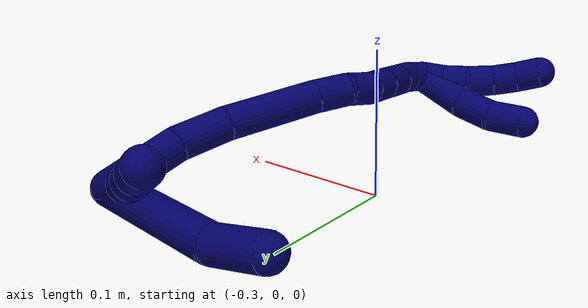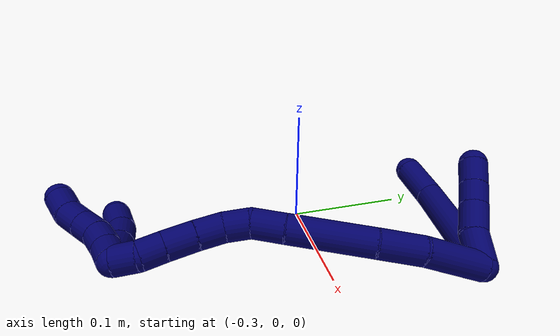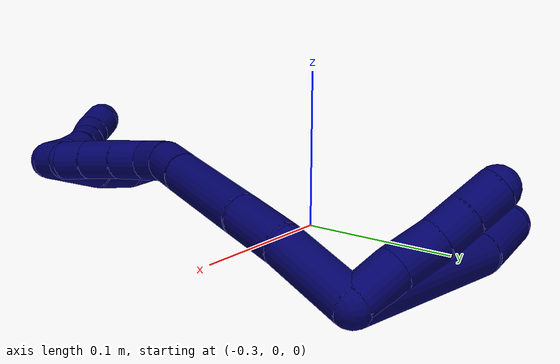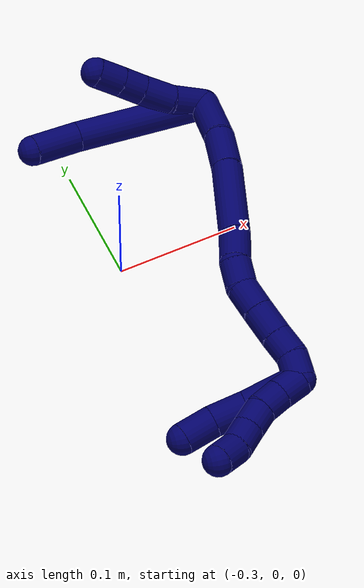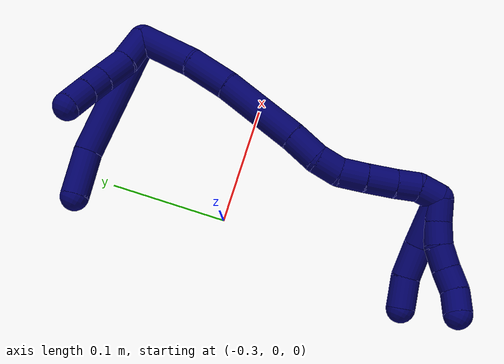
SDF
<sdf version="1.7">
 <world name="default">
  <model name="photoneo_s_sensor">
   <static>1</static>
   <pose>0 0 2 1.57079 1.57079 3.14159</pose>
   <link name="link">
    <inertial><mass>0.1</mass></inertial>
    <sensor name="sensor" type="depth">
     <update_rate>30</update_rate>
     <camera>
      <horizontal_fov>1.22</horizontal_fov>
      <image><width>1920</width><height>1200</height><format>B8G8R8</format></image>
      <clip><near>0.1</near><far>4</far></clip>
      <depth_camera><output>points</output></depth_camera>
     </camera>
     <plugin name="camera_plugin" filename="libgazebo_ros_depth_camera.so">
      <baseline>0.2</baseline>
      <alwaysOn>1</alwaysOn>
      <updateRate>0.0</updateRate>
      <cameraName>camera_ir</cameraName>
      <imageTopicName>/camera/color/image_raw</imageTopicName>
      <cameraInfoTopicName>/camera/color/camera_info</cameraInfoTopicName>
      <depthImageTopicName>/camera/depth/image_raw</depthImageTopicName>
      <depthImageCameraInfoTopicName>/camera/depth/camera_info</depthImageCameraInfoTopicName>
      <pointCloudTopicName>/camera/depth/points</pointCloudTopicName>
      <frameName>fr_optical</frameName>
      <pointCloudCutoff>0.1</pointCloudCutoff>
      <pointCloudCutoffMax>2.0</pointCloudCutoffMax>
      <distortionK1>0</distortionK1>
      <distortionK2>0</distortionK2>
      <distortionK3>0</distortionK3>
      <distortionT1>0</distortionT1>
      <distortionT2>0</distortionT2>
      <CxPrime>0</CxPrime>
      <Cx>0</Cx>
      <Cy>0</Cy>
      <focalLength>0</focalLength>
      <hackBaseline>0</hackBaseline>
     </plugin>
    </sensor>
   </link>
  </model>
  <model name="bin">
   <static>1</static>
   <link name="bottom">
    <collision name="collision-bottom">
     <pose>0 0 -0.01 0 -0 0</pose>
     <geometry><box><size>0.8 0.6 0.02</size></box></geometry>
     <surface>
      <friction><ode><mu>100</mu><mu2>100</mu2></ode></friction>
      <contact><collide_bitmask>65535</collide_bitmask></contact>
     </surface>
    </collision>
   </link>
   <link name="west_wall">
    <collision name="collision-west_wall">
     <pose>-0.41 0 0.1 0 -0 0</pose>
     <geometry><box><size>0.02 0.6 0.2</size></box></geometry>
     <surface>
      <friction><ode><mu>100</mu><mu2>100</mu2></ode></friction>
      <contact><collide_bitmask>65535</collide_bitmask></contact>
     </surface>
    </collision>
   </link>
   <link name="east_wall">
    <collision name="collision-east_wall">
     <pose>0.41 0 0.1 0 -0 0</pose>
     <geometry><box><size>0.02 0.6 0.2</size></box></geometry>
     <surface>
      <friction><ode><mu>100</mu><mu2>100</mu2></ode></friction>
      <contact><collide_bitmask>65535</collide_bitmask></contact>
     </surface>
    </collision>
   </link>
   <link name="south_wall">
    <collision name="collision-south_wall">
     <pose>0 -0.31 0.1 0 -0 0</pose>
     <geometry><box><size>0.8 0.02 0.2</size></box></geometry>
     <surface>
      <friction><ode><mu>100</mu><mu2>100</mu2></ode></friction>
      <contact><collide_bitmask>65535</collide_bitmask></contact>
     </surface>
    </collision>
   </link>
   <link name="north_wall">
    <collision name="collision-north_wall">
     <pose>0 0.31 0.1 0 -0 0</pose>
     <geometry><box><size>0.8 0.02 0.2</size></box></geometry>
     <surface>
      <friction><ode><mu>100</mu><mu2>100</mu2></ode></friction>
      <contact><collide_bitmask>65535</collide_bitmask></contact>
     </surface>
    </collision>
   </link>
  </model>
  <model name="7">
   <static>0</static>
   <link name="7">
    <collision name="collision-cylinder-e_1_2_8">
     <pose>-0.003024 -0.001012 0.054615 0.018529 -0.055312 -0.000513</pose>
     <geometry><cylinder><radius>0.0125</radius><length>0.109416</length></cylinder></geometry>
     <surface>
      <friction><ode><mu>1.16</mu><mu2>1.16</mu2><slip1>0</slip1><slip2>0</slip2></ode></friction>
      <contact><ode><kp>1e+06</kp><kd>1</kd><max_vel>0</max_vel><min_depth>0.001</min_depth></ode></contact>
     </surface>
    </collision>
    <visual name="visual-cylinder-e_1_2_8">
     <pose>-0.003024 -0.001012 0.054615 0.018529 -0.055312 -0.000513</pose>
     <geometry><cylinder><radius>0.0125</radius><length>0.109416</length></cylinder></geometry>
     <material><ambient>0.003922 0 0.403922 1</ambient></material>
    </visual>
    <collision name="collision-cylinder-e_2_8_6">
     <pose>-0.002971 -0.005286 0.12902 0.163359 0.15229 0.012491</pose>
     <geometry><cylinder><radius>0.0125</radius><length>0.040584</length></cylinder></geometry>
     <surface>
      <friction><ode><mu>1.16</mu><mu2>1.16</mu2><slip1>0</slip1><slip2>0</slip2></ode></friction>
      <contact><ode><kp>1e+06</kp><kd>1</kd><max_vel>0</max_vel><min_depth>0.001</min_depth></ode></contact>
     </surface>
    </collision>
    <visual name="visual-cylinder-e_2_8_6">
     <pose>-0.002971 -0.005286 0.12902 0.163359 0.15229 0.012491</pose>
     <geometry><cylinder><radius>0.0125</radius><length>0.040584</length></cylinder></geometry>
     <material><ambient>0.003922 0 0.403922 1</ambient></material>
    </visual>
    <collision name="collision-cylinder-e_1_2_9">
     <pose>0.004818 0.002678 0.013986 -0.189182 0.326218 -0.031224</pose>
     <geometry><cylinder><radius>0.0125</radius><length>0.030066</length></cylinder></geometry>
     <surface>
      <friction><ode><mu>1.16</mu><mu2>1.16</mu2><slip1>0</slip1><slip2>0</slip2></ode></friction>
      <contact><ode><kp>1e+06</kp><kd>1</kd><max_vel>0</max_vel><min_depth>0.001</min_depth></ode></contact>
     </surface>
    </collision>
    <visual name="visual-cylinder-e_1_2_9">
     <pose>0.004818 0.002678 0.013986 -0.189182 0.326218 -0.031224</pose>
     <geometry><cylinder><radius>0.0125</radius><length>0.030066</length></cylinder></geometry>
     <material><ambient>0.003922 0 0.403922 1</ambient></material>
    </visual>
    <collision name="collision-cylinder-e_2_9_10">
     <pose>0.013843 0.010773 0.039759 -0.430822 0.313666 -0.069173</pose>
     <geometry><cylinder><radius>0.0125</radius><length>0.027275</length></cylinder></geometry>
     <surface>
      <friction><ode><mu>1.16</mu><mu2>1.16</mu2><slip1>0</slip1><slip2>0</slip2></ode></friction>
      <contact><ode><kp>1e+06</kp><kd>1</kd><max_vel>0</max_vel><min_depth>0.001</min_depth></ode></contact>
     </surface>
    </collision>
    <visual name="visual-cylinder-e_2_9_10">
     <pose>0.013843 0.010773 0.039759 -0.430822 0.313666 -0.069173</pose>
     <geometry><cylinder><radius>0.0125</radius><length>0.027275</length></cylinder></geometry>
     <material><ambient>0.003922 0 0.403922 1</ambient></material>
    </visual>
    <collision name="collision-cylinder-e_3_10_11">
     <pose>0.022097 0.019906 0.060052 -0.411859 0.411106 -0.087051</pose>
     <geometry><cylinder><radius>0.0125</radius><length>0.020253</length></cylinder></geometry>
     <surface>
      <friction><ode><mu>1.16</mu><mu2>1.16</mu2><slip1>0</slip1><slip2>0</slip2></ode></friction>
      <contact><ode><kp>1e+06</kp><kd>1</kd><max_vel>0</max_vel><min_depth>0.001</min_depth></ode></contact>
     </surface>
    </collision>
    <visual name="visual-cylinder-e_3_10_11">
     <pose>0.022097 0.019906 0.060052 -0.411859 0.411106 -0.087051</pose>
     <geometry><cylinder><radius>0.0125</radius><length>0.020253</length></cylinder></geometry>
     <material><ambient>0.003922 0 0.403922 1</ambient></material>
    </visual>
    <collision name="collision-cylinder-e_4_11_5">
     <pose>0.03056 0.027611 0.078051 -0.397757 0.40514 -0.082741</pose>
     <geometry><cylinder><radius>0.0125</radius><length>0.022406</length></cylinder></geometry>
     <surface>
      <friction><ode><mu>1.16</mu><mu2>1.16</mu2><slip1>0</slip1><slip2>0</slip2></ode></friction>
      <contact><ode><kp>1e+06</kp><kd>1</kd><max_vel>0</max_vel><min_depth>0.001</min_depth></ode></contact>
     </surface>
    </collision>
    <visual name="visual-cylinder-e_4_11_5">
     <pose>0.03056 0.027611 0.078051 -0.397757 0.40514 -0.082741</pose>
     <geometry><cylinder><radius>0.0125</radius><length>0.022406</length></cylinder></geometry>
     <material><ambient>0.003922 0 0.403922 1</ambient></material>
    </visual>
    <collision name="collision-cylinder-e_1_2_12">
     <pose>0.014191 -0.022411 0.002379 1.46506 0.56195 0.507985</pose>
     <geometry><cylinder><radius>0.0125</radius><length>0.053265</length></cylinder></geometry>
     <surface>
      <friction><ode><mu>1.16</mu><mu2>1.16</mu2><slip1>0</slip1><slip2>0</slip2></ode></friction>
      <contact><ode><kp>1e+06</kp><kd>1</kd><max_vel>0</max_vel><min_depth>0.001</min_depth></ode></contact>
     </surface>
    </collision>
    <visual name="visual-cylinder-e_1_2_12">
     <pose>0.014191 -0.022411 0.002379 1.46506 0.56195 0.507985</pose>
     <geometry><cylinder><radius>0.0125</radius><length>0.053265</length></cylinder></geometry>
     <material><ambient>0.003922 0 0.403922 1</ambient></material>
    </visual>
    <collision name="collision-cylinder-e_2_12_13">
     <pose>0.035693 -0.062069 0.008002 1.38484 0.394729 0.32872</pose>
     <geometry><cylinder><radius>0.0125</radius><length>0.038024</length></cylinder></geometry>
     <surface>
      <friction><ode><mu>1.16</mu><mu2>1.16</mu2><slip1>0</slip1><slip2>0</slip2></ode></friction>
      <contact><ode><kp>1e+06</kp><kd>1</kd><max_vel>0</max_vel><min_depth>0.001</min_depth></ode></contact>
     </surface>
    </collision>
    <visual name="visual-cylinder-e_2_12_13">
     <pose>0.035693 -0.062069 0.008002 1.38484 0.394729 0.32872</pose>
     <geometry><cylinder><radius>0.0125</radius><length>0.038024</length></cylinder></geometry>
     <material><ambient>0.003922 0 0.403922 1</ambient></material>
    </visual>
    <collision name="collision-cylinder-e_3_13_14">
     <pose>0.054182 -0.111866 0.02012 1.30466 0.319946 0.245272</pose>
     <geometry><cylinder><radius>0.0125</radius><length>0.071082</length></cylinder></geometry>
     <surface>
      <friction><ode><mu>1.16</mu><mu2>1.16</mu2><slip1>0</slip1><slip2>0</slip2></ode></friction>
      <contact><ode><kp>1e+06</kp><kd>1</kd><max_vel>0</max_vel><min_depth>0.001</min_depth></ode></contact>
     </surface>
    </collision>
    <visual name="visual-cylinder-e_3_13_14">
     <pose>0.054182 -0.111866 0.02012 1.30466 0.319946 0.245272</pose>
     <geometry><cylinder><radius>0.0125</radius><length>0.071082</length></cylinder></geometry>
     <material><ambient>0.003922 0 0.403922 1</ambient></material>
    </visual>
    <collision name="collision-cylinder-e_4_14_15">
     <pose>0.068981 -0.156817 0.033255 1.23976 0.269454 0.192888</pose>
     <geometry><cylinder><radius>0.0125</radius><length>0.027208</length></cylinder></geometry>
     <surface>
      <friction><ode><mu>1.16</mu><mu2>1.16</mu2><slip1>0</slip1><slip2>0</slip2></ode></friction>
      <contact><ode><kp>1e+06</kp><kd>1</kd><max_vel>0</max_vel><min_depth>0.001</min_depth></ode></contact>
     </surface>
    </collision>
    <visual name="visual-cylinder-e_4_14_15">
     <pose>0.068981 -0.156817 0.033255 1.23976 0.269454 0.192888</pose>
     <geometry><cylinder><radius>0.0125</radius><length>0.027208</length></cylinder></geometry>
     <material><ambient>0.003922 0 0.403922 1</ambient></material>
    </visual>
    <collision name="collision-cylinder-e_5_15_16">
     <pose>0.073302 -0.180065 0.038419 1.48778 0.064134 0.059022</pose>
     <geometry><cylinder><radius>0.0125</radius><length>0.021814</length></cylinder></geometry>
     <surface>
      <friction><ode><mu>1.16</mu><mu2>1.16</mu2><slip1>0</slip1><slip2>0</slip2></ode></friction>
      <contact><ode><kp>1e+06</kp><kd>1</kd><max_vel>0</max_vel><min_depth>0.001</min_depth></ode></contact>
     </surface>
    </collision>
    <visual name="visual-cylinder-e_5_15_16">
     <pose>0.073302 -0.180065 0.038419 1.48778 0.064134 0.059022</pose>
     <geometry><cylinder><radius>0.0125</radius><length>0.021814</length></cylinder></geometry>
     <material><ambient>0.003922 0 0.403922 1</ambient></material>
    </visual>
    <collision name="collision-cylinder-e_6_16_17">
     <pose>0.07561 -0.202054 0.036627 1.80809 0.139474 0.177052</pose>
     <geometry><cylinder><radius>0.0125</radius><length>0.023153</length></cylinder></geometry>
     <surface>
      <friction><ode><mu>1.16</mu><mu2>1.16</mu2><slip1>0</slip1><slip2>0</slip2></ode></friction>
      <contact><ode><kp>1e+06</kp><kd>1</kd><max_vel>0</max_vel><min_depth>0.001</min_depth></ode></contact>
     </surface>
    </collision>
    <visual name="visual-cylinder-e_6_16_17">
     <pose>0.07561 -0.202054 0.036627 1.80809 0.139474 0.177052</pose>
     <geometry><cylinder><radius>0.0125</radius><length>0.023153</length></cylinder></geometry>
     <material><ambient>0.003922 0 0.403922 1</ambient></material>
    </visual>
    <collision name="collision-cylinder-e_7_17_18">
     <pose>0.078589 -0.225337 0.030597 1.8389 0.108303 0.141969</pose>
     <geometry><cylinder><radius>0.0125</radius><length>0.025329</length></cylinder></geometry>
     <surface>
      <friction><ode><mu>1.16</mu><mu2>1.16</mu2><slip1>0</slip1><slip2>0</slip2></ode></friction>
      <contact><ode><kp>1e+06</kp><kd>1</kd><max_vel>0</max_vel><min_depth>0.001</min_depth></ode></contact>
     </surface>
    </collision>
    <visual name="visual-cylinder-e_7_17_18">
     <pose>0.078589 -0.225337 0.030597 1.8389 0.108303 0.141969</pose>
     <geometry><cylinder><radius>0.0125</radius><length>0.025329</length></cylinder></geometry>
     <material><ambient>0.003922 0 0.403922 1</ambient></material>
    </visual>
    <collision name="collision-cylinder-e_8_18_19">
     <pose>0.081016 -0.246959 0.024189 1.88416 0.105839 0.145432</pose>
     <geometry><cylinder><radius>0.0125</radius><length>0.020046</length></cylinder></geometry>
     <surface>
      <friction><ode><mu>1.16</mu><mu2>1.16</mu2><slip1>0</slip1><slip2>0</slip2></ode></friction>
      <contact><ode><kp>1e+06</kp><kd>1</kd><max_vel>0</max_vel><min_depth>0.001</min_depth></ode></contact>
     </surface>
    </collision>
    <visual name="visual-cylinder-e_8_18_19">
     <pose>0.081016 -0.246959 0.024189 1.88416 0.105839 0.145432</pose>
     <geometry><cylinder><radius>0.0125</radius><length>0.020046</length></cylinder></geometry>
     <material><ambient>0.003922 0 0.403922 1</ambient></material>
    </visual>
    <collision name="collision-cylinder-e_9_19_1">
     <pose>0.082682 -0.266458 0.021416 1.54099 0.060499 0.058723</pose>
     <geometry><cylinder><radius>0.0125</radius><length>0.020081</length></cylinder></geometry>
     <surface>
      <friction><ode><mu>1.16</mu><mu2>1.16</mu2><slip1>0</slip1><slip2>0</slip2></ode></friction>
      <contact><ode><kp>1e+06</kp><kd>1</kd><max_vel>0</max_vel><min_depth>0.001</min_depth></ode></contact>
     </surface>
    </collision>
    <visual name="visual-cylinder-e_9_19_1">
     <pose>0.082682 -0.266458 0.021416 1.54099 0.060499 0.058723</pose>
     <geometry><cylinder><radius>0.0125</radius><length>0.020081</length></cylinder></geometry>
     <material><ambient>0.003922 0 0.403922 1</ambient></material>
    </visual>
    <collision name="collision-cylinder-e_1_1_20">
     <pose>0.075121 -0.279204 0.042102 0.133001 -0.378019 -0.025478</pose>
     <geometry><cylinder><radius>0.0125</radius><length>0.044265</length></cylinder></geometry>
     <surface>
      <friction><ode><mu>1.16</mu><mu2>1.16</mu2><slip1>0</slip1><slip2>0</slip2></ode></friction>
      <contact><ode><kp>1e+06</kp><kd>1</kd><max_vel>0</max_vel><min_depth>0.001</min_depth></ode></contact>
     </surface>
    </collision>
    <visual name="visual-cylinder-e_1_1_20">
     <pose>0.075121 -0.279204 0.042102 0.133001 -0.378019 -0.025478</pose>
     <geometry><cylinder><radius>0.0125</radius><length>0.044265</length></cylinder></geometry>
     <material><ambient>0.003922 0 0.403922 1</ambient></material>
    </visual>
    <collision name="collision-cylinder-e_2_20_21">
     <pose>0.063845 -0.283547 0.076481 0.114937 -0.21714 -0.012542</pose>
     <geometry><cylinder><radius>0.0125</radius><length>0.028845</length></cylinder></geometry>
     <surface>
      <friction><ode><mu>1.16</mu><mu2>1.16</mu2><slip1>0</slip1><slip2>0</slip2></ode></friction>
      <contact><ode><kp>1e+06</kp><kd>1</kd><max_vel>0</max_vel><min_depth>0.001</min_depth></ode></contact>
     </surface>
    </collision>
    <visual name="visual-cylinder-e_2_20_21">
     <pose>0.063845 -0.283547 0.076481 0.114937 -0.21714 -0.012542</pose>
     <geometry><cylinder><radius>0.0125</radius><length>0.028845</length></cylinder></geometry>
     <material><ambient>0.003922 0 0.403922 1</ambient></material>
    </visual>
    <collision name="collision-cylinder-e_3_21_4">
     <pose>0.060447 -0.288878 0.10339 0.280104 -0.021624 -0.003049</pose>
     <geometry><cylinder><radius>0.0125</radius><length>0.02689</length></cylinder></geometry>
     <surface>
      <friction><ode><mu>1.16</mu><mu2>1.16</mu2><slip1>0</slip1><slip2>0</slip2></ode></friction>
      <contact><ode><kp>1e+06</kp><kd>1</kd><max_vel>0</max_vel><min_depth>0.001</min_depth></ode></contact>
     </surface>
    </collision>
    <visual name="visual-cylinder-e_3_21_4">
     <pose>0.060447 -0.288878 0.10339 0.280104 -0.021624 -0.003049</pose>
     <geometry><cylinder><radius>0.0125</radius><length>0.02689</length></cylinder></geometry>
     <material><ambient>0.003922 0 0.403922 1</ambient></material>
    </visual>
    <collision name="collision-cylinder-e_1_1_22">
     <pose>0.083106 -0.280092 0.031035 0.370105 -0.018319 -0.003429</pose>
     <geometry><cylinder><radius>0.0125</radius><length>0.02</length></cylinder></geometry>
     <surface>
      <friction><ode><mu>1.16</mu><mu2>1.16</mu2><slip1>0</slip1><slip2>0</slip2></ode></friction>
      <contact><ode><kp>1e+06</kp><kd>1</kd><max_vel>0</max_vel><min_depth>0.001</min_depth></ode></contact>
     </surface>
    </collision>
    <visual name="visual-cylinder-e_1_1_22">
     <pose>0.083106 -0.280092 0.031035 0.370105 -0.018319 -0.003429</pose>
     <geometry><cylinder><radius>0.0125</radius><length>0.02</length></cylinder></geometry>
     <material><ambient>0.003922 0 0.403922 1</ambient></material>
    </visual>
    <collision name="collision-cylinder-e_2_22_23">
     <pose>0.083935 -0.288045 0.049311 0.450981 0.101386 0.023276</pose>
     <geometry><cylinder><radius>0.0125</radius><length>0.02</length></cylinder></geometry>
     <surface>
      <friction><ode><mu>1.16</mu><mu2>1.16</mu2><slip1>0</slip1><slip2>0</slip2></ode></friction>
      <contact><ode><kp>1e+06</kp><kd>1</kd><max_vel>0</max_vel><min_depth>0.001</min_depth></ode></contact>
     </surface>
    </collision>
    <visual name="visual-cylinder-e_2_22_23">
     <pose>0.083935 -0.288045 0.049311 0.450981 0.101386 0.023276</pose>
     <geometry><cylinder><radius>0.0125</radius><length>0.02</length></cylinder></geometry>
     <material><ambient>0.003922 0 0.403922 1</ambient></material>
    </visual>
    <collision name="collision-cylinder-e_3_23_24">
     <pose>0.086352 -0.298905 0.065712 0.719368 0.14092 0.053067</pose>
     <geometry><cylinder><radius>0.0125</radius><length>0.02</length></cylinder></geometry>
     <surface>
      <friction><ode><mu>1.16</mu><mu2>1.16</mu2><slip1>0</slip1><slip2>0</slip2></ode></friction>
      <contact><ode><kp>1e+06</kp><kd>1</kd><max_vel>0</max_vel><min_depth>0.001</min_depth></ode></contact>
     </surface>
    </collision>
    <visual name="visual-cylinder-e_3_23_24">
     <pose>0.086352 -0.298905 0.065712 0.719368 0.14092 0.053067</pose>
     <geometry><cylinder><radius>0.0125</radius><length>0.02</length></cylinder></geometry>
     <material><ambient>0.003922 0 0.403922 1</ambient></material>
    </visual>
    <collision name="collision-cylinder-e_4_24_25">
     <pose>0.090344 -0.312004 0.080236 0.748768 0.261768 0.103352</pose>
     <geometry><cylinder><radius>0.0125</radius><length>0.02</length></cylinder></geometry>
     <surface>
      <friction><ode><mu>1.16</mu><mu2>1.16</mu2><slip1>0</slip1><slip2>0</slip2></ode></friction>
      <contact><ode><kp>1e+06</kp><kd>1</kd><max_vel>0</max_vel><min_depth>0.001</min_depth></ode></contact>
     </surface>
    </collision>
    <visual name="visual-cylinder-e_4_24_25">
     <pose>0.090344 -0.312004 0.080236 0.748768 0.261768 0.103352</pose>
     <geometry><cylinder><radius>0.0125</radius><length>0.02</length></cylinder></geometry>
     <material><ambient>0.003922 0 0.403922 1</ambient></material>
    </visual>
    <collision name="collision-cylinder-e_5_25_3">
     <pose>0.096272 -0.322556 0.095858 0.435496 0.340499 0.076037</pose>
     <geometry><cylinder><radius>0.0125</radius><length>0.02</length></cylinder></geometry>
     <surface>
      <friction><ode><mu>1.16</mu><mu2>1.16</mu2><slip1>0</slip1><slip2>0</slip2></ode></friction>
      <contact><ode><kp>1e+06</kp><kd>1</kd><max_vel>0</max_vel><min_depth>0.001</min_depth></ode></contact>
     </surface>
    </collision>
    <visual name="visual-cylinder-e_5_25_3">
     <pose>0.096272 -0.322556 0.095858 0.435496 0.340499 0.076037</pose>
     <geometry><cylinder><radius>0.0125</radius><length>0.02</length></cylinder></geometry>
     <material><ambient>0.003922 0 0.403922 1</ambient></material>
    </visual>
    <collision name="collision-sphere-3">
     <pose>0.099611 -0.326532 0.104404 0 -0 0</pose>
     <geometry><sphere><radius>0.0125</radius></sphere></geometry>
     <surface>
      <friction><ode><mu>1.16</mu><mu2>1.16</mu2><slip1>0</slip1><slip2>0</slip2></ode></friction>
      <contact><ode><kp>1e+06</kp><kd>1</kd><max_vel>0</max_vel><min_depth>0.001</min_depth></ode></contact>
     </surface>
    </collision>
    <visual name="visual-sphere-3">
     <pose>0.099611 -0.326532 0.104404 0 -0 0</pose>
     <geometry><sphere><radius>0.0125</radius></sphere></geometry>
     <material><ambient>0.003922 0 0.403922 1</ambient></material>
    </visual>
    <collision name="collision-sphere-25">
     <pose>0.092932 -0.31858 0.087312 0 -0 0</pose>
     <geometry><sphere><radius>0.0125</radius></sphere></geometry>
     <surface>
      <friction><ode><mu>1.16</mu><mu2>1.16</mu2><slip1>0</slip1><slip2>0</slip2></ode></friction>
      <contact><ode><kp>1e+06</kp><kd>1</kd><max_vel>0</max_vel><min_depth>0.001</min_depth></ode></contact>
     </surface>
    </collision>
    <visual name="visual-sphere-25">
     <pose>0.092932 -0.31858 0.087312 0 -0 0</pose>
     <geometry><sphere><radius>0.0125</radius></sphere></geometry>
     <material><ambient>0.003922 0 0.403922 1</ambient></material>
    </visual>
    <collision name="collision-sphere-24">
     <pose>0.087756 -0.305429 0.07316 0 -0 0</pose>
     <geometry><sphere><radius>0.0125</radius></sphere></geometry>
     <surface>
      <friction><ode><mu>1.16</mu><mu2>1.16</mu2><slip1>0</slip1><slip2>0</slip2></ode></friction>
      <contact><ode><kp>1e+06</kp><kd>1</kd><max_vel>0</max_vel><min_depth>0.001</min_depth></ode></contact>
     </surface>
    </collision>
    <visual name="visual-sphere-24">
     <pose>0.087756 -0.305429 0.07316 0 -0 0</pose>
     <geometry><sphere><radius>0.0125</radius></sphere></geometry>
     <material><ambient>0.003922 0 0.403922 1</ambient></material>
    </visual>
    <collision name="collision-sphere-23">
     <pose>0.084947 -0.292381 0.058265 0 -0 0</pose>
     <geometry><sphere><radius>0.0125</radius></sphere></geometry>
     <surface>
      <friction><ode><mu>1.16</mu><mu2>1.16</mu2><slip1>0</slip1><slip2>0</slip2></ode></friction>
      <contact><ode><kp>1e+06</kp><kd>1</kd><max_vel>0</max_vel><min_depth>0.001</min_depth></ode></contact>
     </surface>
    </collision>
    <visual name="visual-sphere-23">
     <pose>0.084947 -0.292381 0.058265 0 -0 0</pose>
     <geometry><sphere><radius>0.0125</radius></sphere></geometry>
     <material><ambient>0.003922 0 0.403922 1</ambient></material>
    </visual>
    <collision name="collision-sphere-22">
     <pose>0.082923 -0.283709 0.040357 0 -0 0</pose>
     <geometry><sphere><radius>0.0125</radius></sphere></geometry>
     <surface>
      <friction><ode><mu>1.16</mu><mu2>1.16</mu2><slip1>0</slip1><slip2>0</slip2></ode></friction>
      <contact><ode><kp>1e+06</kp><kd>1</kd><max_vel>0</max_vel><min_depth>0.001</min_depth></ode></contact>
     </surface>
    </collision>
    <visual name="visual-sphere-22">
     <pose>0.082923 -0.283709 0.040357 0 -0 0</pose>
     <geometry><sphere><radius>0.0125</radius></sphere></geometry>
     <material><ambient>0.003922 0 0.403922 1</ambient></material>
    </visual>
    <collision name="collision-sphere-4">
     <pose>0.060156 -0.292594 0.116308 0 -0 0</pose>
     <geometry><sphere><radius>0.0125</radius></sphere></geometry>
     <surface>
      <friction><ode><mu>1.16</mu><mu2>1.16</mu2><slip1>0</slip1><slip2>0</slip2></ode></friction>
      <contact><ode><kp>1e+06</kp><kd>1</kd><max_vel>0</max_vel><min_depth>0.001</min_depth></ode></contact>
     </surface>
    </collision>
    <visual name="visual-sphere-4">
     <pose>0.060156 -0.292594 0.116308 0 -0 0</pose>
     <geometry><sphere><radius>0.0125</radius></sphere></geometry>
     <material><ambient>0.003922 0 0.403922 1</ambient></material>
    </visual>
    <collision name="collision-sphere-21">
     <pose>0.060738 -0.285162 0.090472 0 -0 0</pose>
     <geometry><sphere><radius>0.0125</radius></sphere></geometry>
     <surface>
      <friction><ode><mu>1.16</mu><mu2>1.16</mu2><slip1>0</slip1><slip2>0</slip2></ode></friction>
      <contact><ode><kp>1e+06</kp><kd>1</kd><max_vel>0</max_vel><min_depth>0.001</min_depth></ode></contact>
     </surface>
    </collision>
    <visual name="visual-sphere-21">
     <pose>0.060738 -0.285162 0.090472 0 -0 0</pose>
     <geometry><sphere><radius>0.0125</radius></sphere></geometry>
     <material><ambient>0.003922 0 0.403922 1</ambient></material>
    </visual>
    <collision name="collision-sphere-20">
     <pose>0.066952 -0.281931 0.06249 0 -0 0</pose>
     <geometry><sphere><radius>0.0125</radius></sphere></geometry>
     <surface>
      <friction><ode><mu>1.16</mu><mu2>1.16</mu2><slip1>0</slip1><slip2>0</slip2></ode></friction>
      <contact><ode><kp>1e+06</kp><kd>1</kd><max_vel>0</max_vel><min_depth>0.001</min_depth></ode></contact>
     </surface>
    </collision>
    <visual name="visual-sphere-20">
     <pose>0.066952 -0.281931 0.06249 0 -0 0</pose>
     <geometry><sphere><radius>0.0125</radius></sphere></geometry>
     <material><ambient>0.003922 0 0.403922 1</ambient></material>
    </visual>
    <collision name="collision-sphere-11">
     <pose>0.026144 0.023622 0.068558 0 -0 0</pose>
     <geometry><sphere><radius>0.0125</radius></sphere></geometry>
     <surface>
      <friction><ode><mu>1.16</mu><mu2>1.16</mu2><slip1>0</slip1><slip2>0</slip2></ode></friction>
      <contact><ode><kp>1e+06</kp><kd>1</kd><max_vel>0</max_vel><min_depth>0.001</min_depth></ode></contact>
     </surface>
    </collision>
    <visual name="visual-sphere-11">
     <pose>0.026144 0.023622 0.068558 0 -0 0</pose>
     <geometry><sphere><radius>0.0125</radius></sphere></geometry>
     <material><ambient>0.003922 0 0.403922 1</ambient></material>
    </visual>
    <collision name="collision-sphere-10">
     <pose>0.018051 0.01619 0.051545 0 -0 0</pose>
     <geometry><sphere><radius>0.0125</radius></sphere></geometry>
     <surface>
      <friction><ode><mu>1.16</mu><mu2>1.16</mu2><slip1>0</slip1><slip2>0</slip2></ode></friction>
      <contact><ode><kp>1e+06</kp><kd>1</kd><max_vel>0</max_vel><min_depth>0.001</min_depth></ode></contact>
     </surface>
    </collision>
    <visual name="visual-sphere-10">
     <pose>0.018051 0.01619 0.051545 0 -0 0</pose>
     <geometry><sphere><radius>0.0125</radius></sphere></geometry>
     <material><ambient>0.003922 0 0.403922 1</ambient></material>
    </visual>
    <collision name="collision-sphere-6">
     <pose>0.000108 -0.008548 0.14881 0 -0 0</pose>
     <geometry><sphere><radius>0.0125</radius></sphere></geometry>
     <surface>
      <friction><ode><mu>1.16</mu><mu2>1.16</mu2><slip1>0</slip1><slip2>0</slip2></ode></friction>
      <contact><ode><kp>1e+06</kp><kd>1</kd><max_vel>0</max_vel><min_depth>0.001</min_depth></ode></contact>
     </surface>
    </collision>
    <visual name="visual-sphere-6">
     <pose>0.000108 -0.008548 0.14881 0 -0 0</pose>
     <geometry><sphere><radius>0.0125</radius></sphere></geometry>
     <material><ambient>0.003922 0 0.403922 1</ambient></material>
    </visual>
    <collision name="collision-sphere-9">
     <pose>0.009635 0.005356 0.027972 0 -0 0</pose>
     <geometry><sphere><radius>0.0125</radius></sphere></geometry>
     <surface>
      <friction><ode><mu>1.16</mu><mu2>1.16</mu2><slip1>0</slip1><slip2>0</slip2></ode></friction>
      <contact><ode><kp>1e+06</kp><kd>1</kd><max_vel>0</max_vel><min_depth>0.001</min_depth></ode></contact>
     </surface>
    </collision>
    <visual name="visual-sphere-9">
     <pose>0.009635 0.005356 0.027972 0 -0 0</pose>
     <geometry><sphere><radius>0.0125</radius></sphere></geometry>
     <material><ambient>0.003922 0 0.403922 1</ambient></material>
    </visual>
    <collision name="collision-sphere-2">
     <geometry><sphere><radius>0.0125</radius></sphere></geometry>
     <surface>
      <friction><ode><mu>1.16</mu><mu2>1.16</mu2><slip1>0</slip1><slip2>0</slip2></ode></friction>
      <contact><ode><kp>1e+06</kp><kd>1</kd><max_vel>0</max_vel><min_depth>0.001</min_depth></ode></contact>
     </surface>
    </collision>
    <visual name="visual-sphere-2">
     <geometry><sphere><radius>0.0125</radius></sphere></geometry>
     <material><ambient>0.003922 0 0.403922 1</ambient></material>
    </visual>
    <collision name="collision-sphere-19">
     <pose>0.082075 -0.256441 0.021117 0 -0 0</pose>
     <geometry><sphere><radius>0.0125</radius></sphere></geometry>
     <surface>
      <friction><ode><mu>1.16</mu><mu2>1.16</mu2><slip1>0</slip1><slip2>0</slip2></ode></friction>
      <contact><ode><kp>1e+06</kp><kd>1</kd><max_vel>0</max_vel><min_depth>0.001</min_depth></ode></contact>
     </surface>
    </collision>
    <visual name="visual-sphere-19">
     <pose>0.082075 -0.256441 0.021117 0 -0 0</pose>
     <geometry><sphere><radius>0.0125</radius></sphere></geometry>
     <material><ambient>0.003922 0 0.403922 1</ambient></material>
    </visual>
    <collision name="collision-sphere-8">
     <pose>-0.006049 -0.002024 0.109229 0 -0 0</pose>
     <geometry><sphere><radius>0.0125</radius></sphere></geometry>
     <surface>
      <friction><ode><mu>1.16</mu><mu2>1.16</mu2><slip1>0</slip1><slip2>0</slip2></ode></friction>
      <contact><ode><kp>1e+06</kp><kd>1</kd><max_vel>0</max_vel><min_depth>0.001</min_depth></ode></contact>
     </surface>
    </collision>
    <visual name="visual-sphere-8">
     <pose>-0.006049 -0.002024 0.109229 0 -0 0</pose>
     <geometry><sphere><radius>0.0125</radius></sphere></geometry>
     <material><ambient>0.003922 0 0.403922 1</ambient></material>
    </visual>
    <collision name="collision-sphere-5">
     <pose>0.034976 0.031599 0.087543 0 -0 0</pose>
     <geometry><sphere><radius>0.0125</radius></sphere></geometry>
     <surface>
      <friction><ode><mu>1.16</mu><mu2>1.16</mu2><slip1>0</slip1><slip2>0</slip2></ode></friction>
      <contact><ode><kp>1e+06</kp><kd>1</kd><max_vel>0</max_vel><min_depth>0.001</min_depth></ode></contact>
     </surface>
    </collision>
    <visual name="visual-sphere-5">
     <pose>0.034976 0.031599 0.087543 0 -0 0</pose>
     <geometry><sphere><radius>0.0125</radius></sphere></geometry>
     <material><ambient>0.003922 0 0.403922 1</ambient></material>
    </visual>
    <collision name="collision-sphere-12">
     <pose>0.028381 -0.044822 0.004757 0 -0 0</pose>
     <geometry><sphere><radius>0.0125</radius></sphere></geometry>
     <surface>
      <friction><ode><mu>1.16</mu><mu2>1.16</mu2><slip1>0</slip1><slip2>0</slip2></ode></friction>
      <contact><ode><kp>1e+06</kp><kd>1</kd><max_vel>0</max_vel><min_depth>0.001</min_depth></ode></contact>
     </surface>
    </collision>
    <visual name="visual-sphere-12">
     <pose>0.028381 -0.044822 0.004757 0 -0 0</pose>
     <geometry><sphere><radius>0.0125</radius></sphere></geometry>
     <material><ambient>0.003922 0 0.403922 1</ambient></material>
    </visual>
    <collision name="collision-sphere-13">
     <pose>0.043004 -0.079316 0.011247 0 -0 0</pose>
     <geometry><sphere><radius>0.0125</radius></sphere></geometry>
     <surface>
      <friction><ode><mu>1.16</mu><mu2>1.16</mu2><slip1>0</slip1><slip2>0</slip2></ode></friction>
      <contact><ode><kp>1e+06</kp><kd>1</kd><max_vel>0</max_vel><min_depth>0.001</min_depth></ode></contact>
     </surface>
    </collision>
    <visual name="visual-sphere-13">
     <pose>0.043004 -0.079316 0.011247 0 -0 0</pose>
     <geometry><sphere><radius>0.0125</radius></sphere></geometry>
     <material><ambient>0.003922 0 0.403922 1</ambient></material>
    </visual>
    <collision name="collision-sphere-14">
     <pose>0.06536 -0.144415 0.028993 0 -0 0</pose>
     <geometry><sphere><radius>0.0125</radius></sphere></geometry>
     <surface>
      <friction><ode><mu>1.16</mu><mu2>1.16</mu2><slip1>0</slip1><slip2>0</slip2></ode></friction>
      <contact><ode><kp>1e+06</kp><kd>1</kd><max_vel>0</max_vel><min_depth>0.001</min_depth></ode></contact>
     </surface>
    </collision>
    <visual name="visual-sphere-14">
     <pose>0.06536 -0.144415 0.028993 0 -0 0</pose>
     <geometry><sphere><radius>0.0125</radius></sphere></geometry>
     <material><ambient>0.003922 0 0.403922 1</ambient></material>
    </visual>
    <collision name="collision-sphere-15">
     <pose>0.072603 -0.169218 0.037517 0 -0 0</pose>
     <geometry><sphere><radius>0.0125</radius></sphere></geometry>
     <surface>
      <friction><ode><mu>1.16</mu><mu2>1.16</mu2><slip1>0</slip1><slip2>0</slip2></ode></friction>
      <contact><ode><kp>1e+06</kp><kd>1</kd><max_vel>0</max_vel><min_depth>0.001</min_depth></ode></contact>
     </surface>
    </collision>
    <visual name="visual-sphere-15">
     <pose>0.072603 -0.169218 0.037517 0 -0 0</pose>
     <geometry><sphere><radius>0.0125</radius></sphere></geometry>
     <material><ambient>0.003922 0 0.403922 1</ambient></material>
    </visual>
    <collision name="collision-sphere-16">
     <pose>0.074001 -0.190912 0.039322 0 -0 0</pose>
     <geometry><sphere><radius>0.0125</radius></sphere></geometry>
     <surface>
      <friction><ode><mu>1.16</mu><mu2>1.16</mu2><slip1>0</slip1><slip2>0</slip2></ode></friction>
      <contact><ode><kp>1e+06</kp><kd>1</kd><max_vel>0</max_vel><min_depth>0.001</min_depth></ode></contact>
     </surface>
    </collision>
    <visual name="visual-sphere-16">
     <pose>0.074001 -0.190912 0.039322 0 -0 0</pose>
     <geometry><sphere><radius>0.0125</radius></sphere></geometry>
     <material><ambient>0.003922 0 0.403922 1</ambient></material>
    </visual>
    <collision name="collision-sphere-17">
     <pose>0.07722 -0.213197 0.033932 0 -0 0</pose>
     <geometry><sphere><radius>0.0125</radius></sphere></geometry>
     <surface>
      <friction><ode><mu>1.16</mu><mu2>1.16</mu2><slip1>0</slip1><slip2>0</slip2></ode></friction>
      <contact><ode><kp>1e+06</kp><kd>1</kd><max_vel>0</max_vel><min_depth>0.001</min_depth></ode></contact>
     </surface>
    </collision>
    <visual name="visual-sphere-17">
     <pose>0.07722 -0.213197 0.033932 0 -0 0</pose>
     <geometry><sphere><radius>0.0125</radius></sphere></geometry>
     <material><ambient>0.003922 0 0.403922 1</ambient></material>
    </visual>
    <collision name="collision-sphere-18">
     <pose>0.079958 -0.237478 0.027262 0 -0 0</pose>
     <geometry><sphere><radius>0.0125</radius></sphere></geometry>
     <surface>
      <friction><ode><mu>1.16</mu><mu2>1.16</mu2><slip1>0</slip1><slip2>0</slip2></ode></friction>
      <contact><ode><kp>1e+06</kp><kd>1</kd><max_vel>0</max_vel><min_depth>0.001</min_depth></ode></contact>
     </surface>
    </collision>
    <visual name="visual-sphere-18">
     <pose>0.079958 -0.237478 0.027262 0 -0 0</pose>
     <geometry><sphere><radius>0.0125</radius></sphere></geometry>
     <material><ambient>0.003922 0 0.403922 1</ambient></material>
    </visual>
    <collision name="collision-sphere-1">
     <pose>0.083289 -0.276476 0.021714 0 -0 0</pose>
     <geometry><sphere><radius>0.0125</radius></sphere></geometry>
     <surface>
      <friction><ode><mu>1.16</mu><mu2>1.16</mu2><slip1>0</slip1><slip2>0</slip2></ode></friction>
      <contact><ode><kp>1e+06</kp><kd>1</kd><max_vel>0</max_vel><min_depth>0.001</min_depth></ode></contact>
     </surface>
    </collision>
    <visual name="visual-sphere-1">
     <pose>0.083289 -0.276476 0.021714 0 -0 0</pose>
     <geometry><sphere><radius>0.0125</radius></sphere></geometry>
     <material><ambient>0.003922 0 0.403922 1</ambient></material>
    </visual>
    <inertial>
     <pose>0.044348 -0.130205 0.046822 0 -0 0</pose>
     <mass>0.75</mass>
     <inertia>
      <ixx>0.000233</ixx>
      <ixy>0</ixy>
      <ixz>0</ixz>
      <iyy>0.000159</iyy>
      <iyz>0</iyz>
      <izz>8.2e-05</izz>
     </inertia>
    </inertial>
   </link>
   <pose>-0.171429 0.115247 0.012342 1.31965 -1.33536 -1.45666</pose>
  </model>
 </world>
</sdf>
